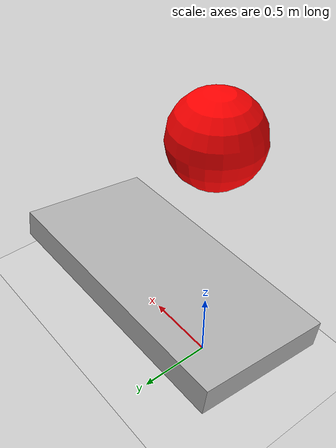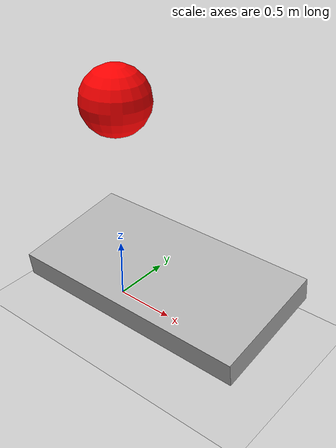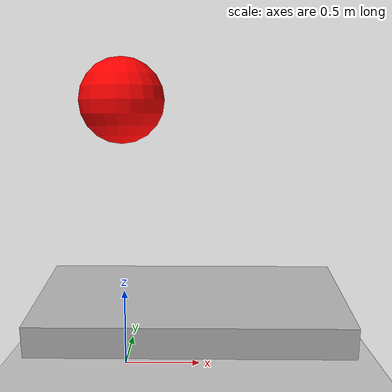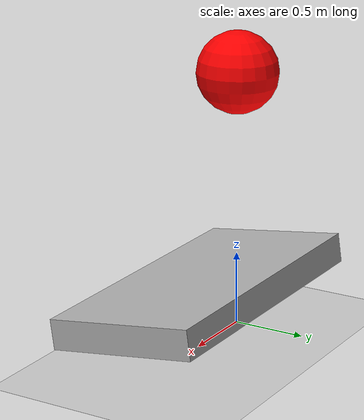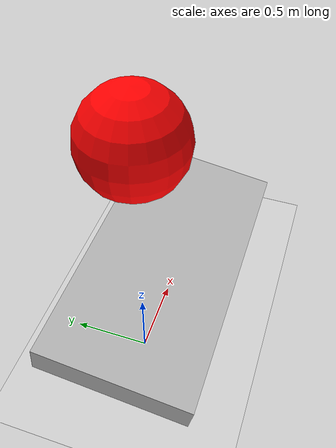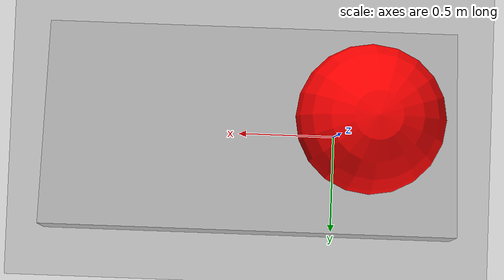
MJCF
<mujoco model="dynamic_scene">
        <option timestep="0.01" gravity="0 0 -9.81"/>
        <worldbody>
            <!-- Suelo -->
            <geom name="floor" type="plane" size="10 10 0.1" rgba="0.8 0.8 0.8 1"/>
            <!-- Esfera -->
            <body name="ball" pos="0.0 0.0 1.75">
                <geom type="sphere" size="0.275" rgba="1 0 0 1"/>
                <joint type="free"/>
            </body>
            <!-- Rampa -->
            <body name="ramp" pos="0.43999999999999995 0.0 0.3879999999999999">
                <geom name="inclined_ramp" type="box" size="1 0.5 0.1" rgba="0.7 0.7 0.7 1" euler="8.0 0 0"/>
            </body>
        </worldbody>
    </mujoco>
